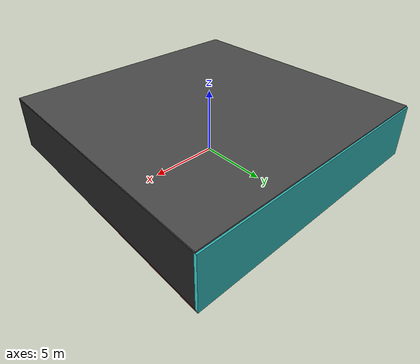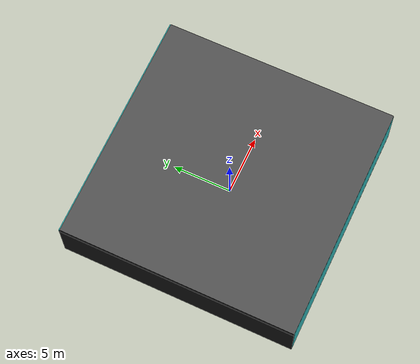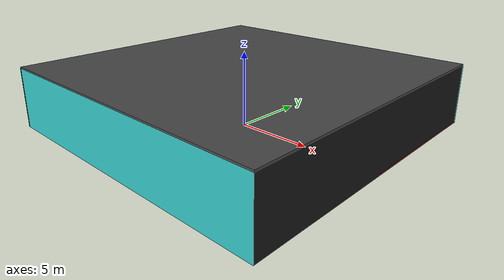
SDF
<sdf version="1.4">
 <world name="default">
  <physics type="ode">
   <max_step_size>0.001</max_step_size>
   <real_time_factor>1</real_time_factor>
   <real_time_update_rate>1000</real_time_update_rate>
   <gravity>0 0 -9.8</gravity>
  </physics>
  <scene><ambient>0.4 0.4 0.4 1</ambient><background>0.7 0.7 0.7 1</background><shadows>1</shadows></scene>
  <model name="Surrounding">
   <static>1</static>
   <link name="Ceiling">
    <collision name="Ceiling_Collision"><geometry><box><size>20 20 0.1</size></box></geometry></collision>
    <visual name="Ceiling_Visual">
     <geometry><box><size>20 20 0.1</size></box></geometry>
     <material>
      <script><uri>file://media/materials/scripts/gazebo.material</uri><name>Gazebo/Road</name></script>
     </material>
    </visual>
    <pose>0 0 4.05 0 0 0</pose>
   </link>
   <link name="Wall_South">
    <collision name="Wall_South_Collision">
     <geometry><box><size>20 0 4</size></box></geometry>
     <pose>0 0 2 0 -0 0</pose>
    </collision>
    <visual name="Wall_South_Visual">
     <pose>0 0 2 0 -0 0</pose>
     <geometry><box><size>20 0 4</size></box></geometry>
     <material>
      <script><uri>file://media/materials/scripts/gazebo.material</uri><name>Gazebo/TurquoiseGlow</name></script>
     </material>
    </visual>
    <velocity_decay><linear>0</linear><angular>0</angular></velocity_decay>
    <pose>0 -10 0 0 -0 0</pose>
   </link>
   <link name="Wall_East">
    <collision name="Wall_21_Collision">
     <geometry><box><size>20 0 4</size></box></geometry>
     <pose>0 0 2 0 -0 0</pose>
    </collision>
    <visual name="Wall_21_Visual">
     <pose>0 0 2 0 -0 0</pose>
     <geometry><box><size>20 0 4</size></box></geometry>
     <material>
      <script><uri>file://media/materials/scripts/gazebo.material</uri><name>Gazebo/Black</name></script>
     </material>
    </visual>
    <velocity_decay><linear>0</linear><angular>0</angular></velocity_decay>
    <pose>10 0 0 0 -0 1.5708</pose>
   </link>
   <link name="Wall_North">
    <collision name="Wall_22_Collision">
     <geometry><box><size>20 0.2 4</size></box></geometry>
     <pose>0 0 2 0 -0 0</pose>
    </collision>
    <visual name="Wall_22_Visual">
     <pose>0 0 2 0 -0 0</pose>
     <geometry><box><size>20 0.2 4</size></box></geometry>
     <material>
      <script>
       <uri>file://media/materials/scripts/gazebo.material</uri>
       <name>Gazebo/TurquoiseGlowOutline</name>
      </script>
     </material>
    </visual>
    <velocity_decay><linear>0</linear><angular>0</angular></velocity_decay>
    <pose>0 10 0 0 -0 0</pose>
   </link>
   <link name="Wall_West">
    <collision name="Wall_23_Collision">
     <geometry><box><size>20 0.2 4</size></box></geometry>
     <pose>0 0 2 0 -0 0</pose>
    </collision>
    <visual name="Wall_23_Visual">
     <pose>0 0 2 0 -0 0</pose>
     <geometry><box><size>20 0.2 4</size></box></geometry>
     <material>
      <script><uri>file://media/materials/scripts/gazebo.material</uri><name>Gazebo/FlatBlack</name></script>
     </material>
    </visual>
    <velocity_decay><linear>0</linear><angular>0</angular></velocity_decay>
    <pose>-10 0 0 0 0 -1.5708</pose>
   </link>
   <link name="Ground_link">
    <collision name="collision">
     <pose>0 0 .05 0 -0 0</pose>
     <geometry><box><size>20 20 0.1</size></box></geometry>
    </collision>
    <visual name="visual">
     <pose>0 0 .05 0 -0 0</pose>
     <geometry><box><size>20 20 0.1</size></box></geometry>
     <material>
      <script><uri>file://media/materials/scripts/gazebo.material</uri><name>Gazebo/RedTransparent</name></script>
     </material>
    </visual>
   </link>
   <static>1</static>
  </model>
  <spherical_coordinates>
   <surface_model>EARTH_WGS84</surface_model>
   <latitude_deg>0</latitude_deg>
   <longitude_deg>0</longitude_deg>
   <elevation>0</elevation>
   <heading_deg>0</heading_deg>
  </spherical_coordinates>
  <light name="lightball_0" type="diffuse">
   <diffuse>0.8 0.8 0.8 1</diffuse>
   <specular>0.2 0.2 0.2 1</specular>
   <attenuation>
    <range>100</range>
    <constant>0.7</constant>
    <linear>0.01</linear>
    <quadratic>0.001</quadratic>
   </attenuation>
   <direction>-0.5 0.1 -0.9</direction>
   <pose>-3.82059891633 2.77915697168 1.00473626002 0 0 0</pose>
  </light>
  <light name="lightball_1" type="diffuse">
   <diffuse>0.8 0.8 0.8 1</diffuse>
   <specular>0.2 0.2 0.2 1</specular>
   <attenuation>
    <range>100</range>
    <constant>0.7</constant>
    <linear>0.01</linear>
    <quadratic>0.001</quadratic>
   </attenuation>
   <direction>-0.5 0.1 -0.9</direction>
   <pose>-4.21705365368 2.73478701466 2.37866329407 0 0 0</pose>
  </light>
  <light name="lightball_2" type="diffuse">
   <diffuse>0.8 0.8 0.8 1</diffuse>
   <specular>0.2 0.2 0.2 1</specular>
   <attenuation>
    <range>100</range>
    <constant>0.7</constant>
    <linear>0.01</linear>
    <quadratic>0.001</quadratic>
   </attenuation>
   <direction>-0.5 0.1 -0.9</direction>
   <pose>9.43665131879 -0.994764813915 1.02726127886 0 0 0</pose>
  </light>
  <light name="lightball_3" type="diffuse">
   <diffuse>0.8 0.8 0.8 1</diffuse>
   <specular>0.2 0.2 0.2 1</specular>
   <attenuation>
    <range>100</range>
    <constant>0.7</constant>
    <linear>0.01</linear>
    <quadratic>0.001</quadratic>
   </attenuation>
   <direction>-0.5 0.1 -0.9</direction>
   <pose>-2.73752851186 8.51419265168 2.93922626079 0 0 0</pose>
  </light>
  <light name="lightball_4" type="diffuse">
   <diffuse>0.8 0.8 0.8 1</diffuse>
   <specular>0.2 0.2 0.2 1</specular>
   <attenuation>
    <range>100</range>
    <constant>0.7</constant>
    <linear>0.01</linear>
    <quadratic>0.001</quadratic>
   </attenuation>
   <direction>-0.5 0.1 -0.9</direction>
   <pose>-8.4029914737 -2.29584953504 2.75026050575 0 0 0</pose>
  </light>
  <light name="lightball_5" type="diffuse">
   <diffuse>0.8 0.8 0.8 1</diffuse>
   <specular>0.2 0.2 0.2 1</specular>
   <attenuation>
    <range>100</range>
    <constant>0.7</constant>
    <linear>0.01</linear>
    <quadratic>0.001</quadratic>
   </attenuation>
   <direction>-0.5 0.1 -0.9</direction>
   <pose>6.50965574459 8.10952767773 1.51010603561 0 0 0</pose>
  </light>
  <light name="lightball_6" type="diffuse">
   <diffuse>0.8 0.8 0.8 1</diffuse>
   <specular>0.2 0.2 0.2 1</specular>
   <attenuation>
    <range>100</range>
    <constant>0.7</constant>
    <linear>0.01</linear>
    <quadratic>0.001</quadratic>
   </attenuation>
   <direction>-0.5 0.1 -0.9</direction>
   <pose>0.348524497217 3.83383368568 2.56429941505 0 0 0</pose>
  </light>
  <light name="lightball_7" type="diffuse">
   <diffuse>0.8 0.8 0.8 1</diffuse>
   <specular>0.2 0.2 0.2 1</specular>
   <attenuation>
    <range>100</range>
    <constant>0.7</constant>
    <linear>0.01</linear>
    <quadratic>0.001</quadratic>
   </attenuation>
   <direction>-0.5 0.1 -0.9</direction>
   <pose>-7.82181572782 8.18819921566 2.3436300085 0 0 0</pose>
  </light>
  <light name="lightball_8" type="diffuse">
   <diffuse>0.8 0.8 0.8 1</diffuse>
   <specular>0.2 0.2 0.2 1</specular>
   <attenuation>
    <range>100</range>
    <constant>0.7</constant>
    <linear>0.01</linear>
    <quadratic>0.001</quadratic>
   </attenuation>
   <direction>-0.5 0.1 -0.9</direction>
   <pose>3.58282029534 -5.57738145897 1.72894411522 0 0 0</pose>
  </light>
  <light name="lightball_9" type="diffuse">
   <diffuse>0.8 0.8 0.8 1</diffuse>
   <specular>0.2 0.2 0.2 1</specular>
   <attenuation>
    <range>100</range>
    <constant>0.7</constant>
    <linear>0.01</linear>
    <quadratic>0.001</quadratic>
   </attenuation>
   <direction>-0.5 0.1 -0.9</direction>
   <pose>-3.79658389692 8.01740215499 0.50304157972 0 0 0</pose>
  </light>
  <light name="lightball_10" type="diffuse">
   <diffuse>0.8 0.8 0.8 1</diffuse>
   <specular>0.2 0.2 0.2 1</specular>
   <attenuation>
    <range>100</range>
    <constant>0.7</constant>
    <linear>0.01</linear>
    <quadratic>0.001</quadratic>
   </attenuation>
   <direction>-0.5 0.1 -0.9</direction>
   <pose>-9.54529746225 0.348075372842 1.58706631391 0 0 0</pose>
  </light>
  <light name="lightball_11" type="diffuse">
   <diffuse>0.8 0.8 0.8 1</diffuse>
   <specular>0.2 0.2 0.2 1</specular>
   <attenuation>
    <range>100</range>
    <constant>0.7</constant>
    <linear>0.01</linear>
    <quadratic>0.001</quadratic>
   </attenuation>
   <direction>-0.5 0.1 -0.9</direction>
   <pose>-4.82066382799 4.35456330685 3.66760189283 0 0 0</pose>
  </light>
  <light name="lightball_12" type="diffuse">
   <diffuse>0.8 0.8 0.8 1</diffuse>
   <specular>0.2 0.2 0.2 1</specular>
   <attenuation>
    <range>100</range>
    <constant>0.7</constant>
    <linear>0.01</linear>
    <quadratic>0.001</quadratic>
   </attenuation>
   <direction>-0.5 0.1 -0.9</direction>
   <pose>-1.93457397753 -5.16474410061 1.32048993782 0 0 0</pose>
  </light>
  <light name="lightball_13" type="diffuse">
   <diffuse>0.8 0.8 0.8 1</diffuse>
   <specular>0.2 0.2 0.2 1</specular>
   <attenuation>
    <range>100</range>
    <constant>0.7</constant>
    <linear>0.01</linear>
    <quadratic>0.001</quadratic>
   </attenuation>
   <direction>-0.5 0.1 -0.9</direction>
   <pose>-8.74690775359 -5.01528525137 3.66480917182 0 0 0</pose>
  </light>
  <include>
   <uri>model://robocup_3Dsim_goal</uri>
   <pose>-7.76401307832 -8.64332729449 0 0 0 1.93583316506</pose>
  </include>
  <include>
   <uri>model://construction_cone</uri>
   <pose>-4.14465530623 -8.07392296383 0 0 0 1.7178021215</pose>
  </include>
  <include><uri>model://cabinet</uri><pose>8.67534646256 1.93628006079 0 0 0 1.54661930252</pose></include>
 </world>
</sdf>

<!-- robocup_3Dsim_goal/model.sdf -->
<sdf version="1.5">
  <model name="robocup_3d_goal">
    <static>true</static>
    <link name="left_post">
      <pose>0 1.05 0.45 0 0 0</pose>
      <collision name="collision">
        <geometry>
          <cylinder>
            <radius>0.05</radius>
            <length>0.9</length>
          </cylinder>
        </geometry>
      </collision>
      <visual name="visual">
        <geometry>
          <cylinder>
            <radius>0.05</radius>
            <length>0.9</length>
          </cylinder>
        </geometry>
        <material>
          <script>
            <uri>file://media/materials/scripts/gazebo.material</uri>
            <name>Gazebo/ZincYellow</name>
          </script>
        </material>
      </visual>
    </link>
    <link name="left_support_horiz_lower">
      <pose>0.30 1.05 0.01 0 0 0</pose>
      <collision name="collision">
        <geometry>
          <box>
            <size>0.50 0.02 0.02</size>
          </box>
        </geometry>
      </collision>
      <visual name="visual">
        <geometry>
          <box>
            <size>0.50 0.02 0.02</size>
          </box>
        </geometry>
        <material>
          <script>
            <uri>file://media/materials/scripts/gazebo.material</uri>
            <name>Gazebo/White</name>
          </script>
        </material>
      </visual>
    </link>
    <link name="left_support_horiz_upper">
      <pose>0.30 1.05 0.79 0 0 0</pose>
      <collision name="collision">
        <geometry>
          <box>
            <size>0.50 0.02 0.02</size>
          </box>
        </geometry>
      </collision>
      <visual name="visual">
        <geometry>
          <box>
            <size>0.50 0.02 0.02</size>
          </box>
        </geometry>
        <material>
          <script>
            <uri>file://media/materials/scripts/gazebo.material</uri>
            <name>Gazebo/White</name>
          </script>
        </material>
      </visual>
    </link>
    <link name="left_support_vertical">
      <pose>0.56 1.05 0.4 0 1.5708 0</pose>
      <collision name="collision">
        <geometry>
          <box>
            <size>0.80 0.02 0.02</size>
          </box>
        </geometry>
      </collision>
      <visual name="visual">
        <geometry>
          <box>
            <size>0.80 0.02 0.02</size>
          </box>
        </geometry>
        <material>
          <script>
            <uri>file://media/materials/scripts/gazebo.material</uri>
            <name>Gazebo/White</name>
          </script>
        </material>
      </visual>
    </link>
    <link name="right_support_horiz_lower">
      <pose>0.30 -1.05 0.01 0 0 0</pose>
      <collision name="collision">
        <geometry>
          <box>
            <size>0.50 0.02 0.02</size>
          </box>
        </geometry>
      </collision>
      <visual name="visual">
        <geometry>
          <box>
            <size>0.50 0.02 0.02</size>
          </box>
        </geometry>
        <material>
          <script>
            <uri>file://media/materials/scripts/gazebo.material</uri>
            <name>Gazebo/White</name>
          </script>
        </material>
      </visual>
    </link>
    <link name="right_support_horiz_upper">
      <pose>0.30 -1.05 0.79 0 0 0</pose>
      <collision name="collision">
        <geometry>
          <box>
            <size>0.50 0.02 0.02</size>
          </box>
        </geometry>
      </collision>
      <visual name="visual">
        <geometry>
          <box>
            <size>0.50 0.02 0.02</size>
          </box>
        </geometry>
        <material>
          <script>
            <uri>file://media/materials/scripts/gazebo.material</uri>
            <name>Gazebo/White</name>
          </script>
        </material>
      </visual>
    </link>
    <link name="right_support_vertical">
      <pose>0.56 -1.05 0.4 0 1.5708 0</pose>
      <collision name="collision">
        <geometry>
          <box>
            <size>0.80 0.02 0.02</size>
          </box>
        </geometry>
      </collision>
      <visual name="visual">
        <geometry>
          <box>
            <size>0.80 0.02 0.02</size>
          </box>
        </geometry>
        <material>
          <script>
            <uri>file://media/materials/scripts/gazebo.material</uri>
            <name>Gazebo/White</name>
          </script>
        </material>
      </visual>
    </link>
    <link name="center_support_horiz_lower">
      <pose>0.56 0 0.01 0 1.5708 0</pose>
      <collision name="collision">
        <geometry>
          <box>
            <size>0.02 2.08 0.02</size>
          </box>
        </geometry>
      </collision>
      <visual name="visual">
        <geometry>
          <box>
            <size>0.02 2.08 0.02</size>
          </box>
        </geometry>
        <material>
          <script>
            <uri>file://media/materials/scripts/gazebo.material</uri>
            <name>Gazebo/White</name>
          </script>
        </material>
      </visual>
    </link>
    <link name="center_support_horiz_upper">
      <pose>0.56 0 0.79 0 1.5708 0</pose>
      <collision name="collision">
        <geometry>
          <box>
            <size>0.02 2.08 0.02</size>
          </box>
        </geometry>
      </collision>
      <visual name="visual">
        <geometry>
          <box>
            <size>0.02 2.08 0.02</size>
          </box>
        </geometry>
        <material>
          <script>
            <uri>file://media/materials/scripts/gazebo.material</uri>
            <name>Gazebo/White</name>
          </script>
        </material>
      </visual>
    </link>
    <link name="right_post">
      <pose>0 -1.05 0.45 0 0 0</pose>
      <collision name="collision">
        <geometry>
          <cylinder>
            <radius>0.05</radius>
            <length>0.9</length>
          </cylinder>
        </geometry>
      </collision>
      <visual name="visual">
        <geometry>
          <cylinder>
            <radius>0.05</radius>
            <length>0.9</length>
          </cylinder>
        </geometry>
        <material>
          <script>
            <uri>file://media/materials/scripts/gazebo.material</uri>
            <name>Gazebo/ZincYellow</name>
          </script>
        </material>
      </visual>
    </link>
    <link name="crossbar">
      <pose>0 0 0.85 1.57 1.57 0</pose>
      <collision name="collision">
        <geometry>
          <cylinder>
            <radius>0.05</radius>
            <length>2.0</length>
          </cylinder>
        </geometry>
      </collision>
      <visual name="visual">
        <geometry>
          <cylinder>
            <radius>0.05</radius>
            <length>2.0</length>
          </cylinder>
        </geometry>
        <material>
          <script>
            <uri>file://media/materials/scripts/gazebo.material</uri>
            <name>Gazebo/ZincYellow</name>
          </script>
        </material>
      </visual>
    </link>
    <link name="center_net">
      <pose>0.56 0 0.40 0 0 0</pose>
      <collision name="collision">
        <geometry>
          <box>
            <size>0.01 2.1 0.80</size>
          </box>
        </geometry>
      </collision>
      <visual name="visual">
        <geometry>
          <box>
            <size>0.01 2.1 0.80</size>
          </box>
        </geometry>
        <material>
          <script>
            <uri>model://../model_source/models/robocup09_spl_field/materials/scripts/</uri>
            <uri>model://../model_source/models/robocup09_spl_field/materials/textures/</uri>
            <name>RoboCup/Net</name>
          </script>
        </material>
      </visual>
    </link>
    <link name="left_net">
      <pose>0.30 1.05 0.40 0 0 0</pose>
      <collision name="collision">
        <geometry>
          <box>
            <size>0.50 0.01 0.76</size>
          </box>
        </geometry>
      </collision>
      <visual name="visual">
        <geometry>
          <box>
            <size>0.50 0.01 0.76</size>
          </box>
        </geometry>
        <material>
          <script>
            <uri>model://../model_source/models/robocup09_spl_field/materials/scripts/</uri>
            <uri>model://../model_source/models/robocup09_spl_field/materials/textures/</uri>
            <name>RoboCup/Net</name>
          </script>
        </material>
      </visual>
    </link>
    <link name="right_net">
      <pose>0.30 -1.05 0.40 0 0 0</pose>
      <collision name="collision">
        <geometry>
          <box>
            <size>0.50 0.01 0.76</size>
          </box>
        </geometry>
      </collision>
      <visual name="visual">
        <geometry>
          <box>
            <size>0.50 0.01 0.76</size>
          </box>
        </geometry>
        <material>
          <script>
            <uri>model://../model_source/models/robocup09_spl_field/materials/scripts/</uri>
            <uri>model://../model_source/models/robocup09_spl_field/materials/textures/</uri>
            <name>RoboCup/Net</name>
          </script>
        </material>
      </visual>
    </link>
  </model>
</sdf>

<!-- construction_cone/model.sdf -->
<sdf version="1.5">
  <model name="Construction Cone">
    <link name="link">
      <collision name="collision">
        <geometry>
          <mesh>
            <scale>10 10 10</scale>
            <uri>file://isr-testbed/construction_cone/meshes/construction_cone.dae</uri>
          </mesh>
        </geometry>
      </collision>
      <visual name="visual">
        <geometry>
          <mesh>
            <scale>10 10 10</scale>
            <uri>file://isr-testbed/construction_cone/meshes/construction_cone.dae</uri>
          </mesh>
        </geometry>
      </visual>
    </link>
  </model>
</sdf>

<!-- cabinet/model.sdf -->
<sdf version="1.5">
  <model name="cabinet">
    <static>true</static>
    <link name="cabinet_bottom_plate">
      <inertial>
        <pose>0 0 -1 0 0 0</pose>
        <inertia>
          <ixx>2.050000</ixx>
          <ixy>0</ixy>
          <ixz>0</ixz>
          <iyy>2.050000</iyy>
          <iyz>0</iyz>
          <izz>2.050000</izz>
        </inertia>
        <mass>25.000000</mass>
      </inertial>
      <collision name="cabinet_bottom_plate_geom">
        <pose>0 0 0.010000 0 0 0</pose>
        <geometry>
          <box>
            <size>0.450000 0.450000 0.020000</size>
          </box>
        </geometry>
      </collision>
      <visual name="cabinet_bottom_plate_geom_visual">
        <pose>0 0 0.010000 0 0 0</pose>
        <geometry>
          <box>
            <size>0.450000 0.450000 0.020000</size>
          </box>
        </geometry>
        <material>
          <script>
            <uri>model://media/materials/scripts/gazebo.material</uri>
            <name>Gazebo/Wood</name>
          </script>
        </material>
      </visual>
      <collision name="cabinet_bottom_plate_geom_cabinet_back_plate">
        <pose>0.235000 0 0.510000 0 0 0</pose>
        <geometry>
          <box>
            <size>0.020000 0.450000 1.020000</size>
          </box>
        </geometry>
      </collision>
      <visual name="cabinet_bottom_plate_geom_cabinet_back_plate_visual">
        <pose>0.235000 0 0.510000 0 0 0</pose>
        <geometry>
          <box>
            <size>0.020000 0.450000 1.020000</size>
          </box>
        </geometry>
        <material>
          <script>
            <uri>model://media/materials/scripts/gazebo.material</uri>
            <name>Gazebo/Wood</name>
          </script>
        </material>
      </visual>
      <collision name="cabinet_bottom_plate_geom_cabinet_left_plate">
        <pose>0 0.235000 0.510000 0 0 0</pose>
        <geometry>
          <box>
            <size>0.450000 0.020000 1.020000</size>
          </box>
        </geometry>
      </collision>
      <visual name="cabinet_bottom_plate_geom_cabinet_left_plate_visual">
        <pose>0 0.235000 0.510000 0 0 0</pose>
        <geometry>
          <box>
            <size>0.450000 0.020000 1.020000</size>
          </box>
        </geometry>
        <material>
          <script>
            <uri>model://media/materials/scripts/gazebo.material</uri>
            <name>Gazebo/Wood</name>
          </script>
        </material>
      </visual>
      <collision name="cabinet_bottom_plate_geom_cabinet_middle_plate">
        <pose>0 0 0.510000 0 0 0</pose>
        <geometry>
          <box>
            <size>0.450000 0.450000 0.020000</size>
          </box>
        </geometry>
      </collision>
      <visual name="cabinet_bottom_plate_geom_cabinet_middle_plate_visual">
        <pose>0 0 0.510000 0 0 0</pose>
        <geometry>
          <box>
            <size>0.450000 0.450000 0.020000</size>
          </box>
        </geometry>
        <material>
          <script>
            <uri>model://media/materials/scripts/gazebo.material</uri>
            <name>Gazebo/Wood</name>
          </script>
        </material>
      </visual>
      <collision name="cabinet_bottom_plate_geom_cabinet_right_plate">
        <pose>0 -0.235000 0.510000 0 0 0</pose>
        <geometry>
          <box>
            <size>0.450000 0.020000 1.020000</size>
          </box>
        </geometry>
      </collision>
      <visual name="cabinet_bottom_plate_geom_cabinet_right_plate_visual">
        <pose>0 -0.235000 0.510000 0 0 0</pose>
        <geometry>
          <box>
            <size>0.450000 0.020000 1.020000</size>
          </box>
        </geometry>
        <material>
          <script>
            <uri>model://media/materials/scripts/gazebo.material</uri>
            <name>Gazebo/Wood</name>
          </script>
        </material>
      </visual>
      <collision name="cabinet_bottom_plate_geom_cabinet_top_plate">
        <pose>0 0 1.010000 0 0 0</pose>
        <geometry>
          <box>
            <size>0.450000 0.450000 0.020000</size>
          </box>
        </geometry>
      </collision>
      <visual name="cabinet_bottom_plate_geom_cabinet_top_plate_visual">
        <pose>0 0 1.010000 0 0 0</pose>
        <geometry>
          <box>
            <size>0.450000 0.450000 0.020000</size>
          </box>
        </geometry>
        <material>
          <script>
            <uri>model://media/materials/scripts/gazebo.material</uri>
            <name>Gazebo/Wood</name>
          </script>
        </material>
      </visual>
    </link>
  </model>
</sdf>
